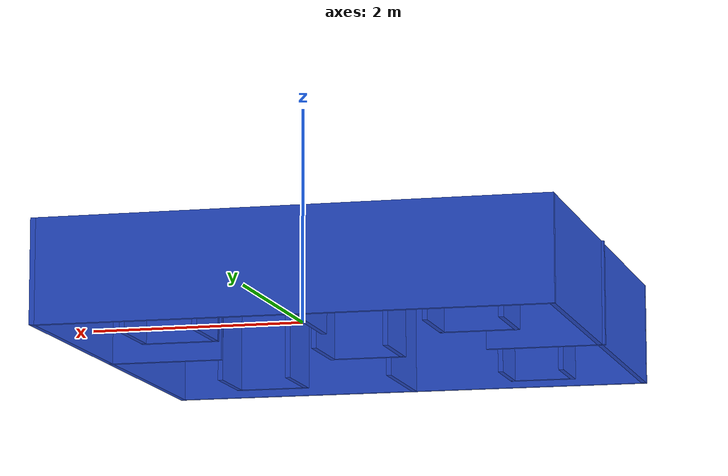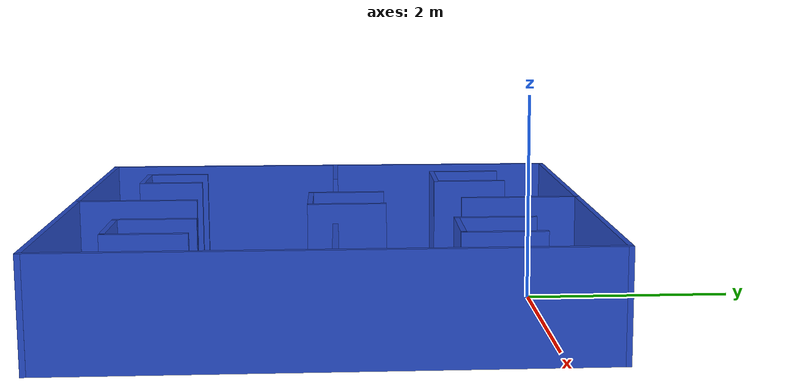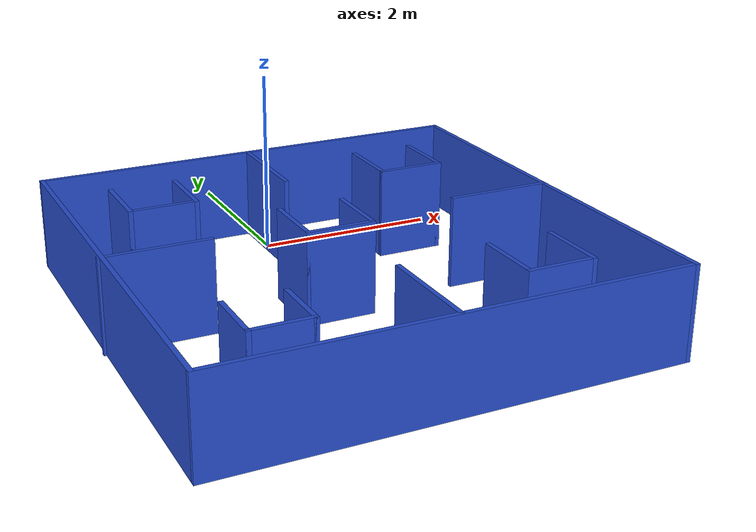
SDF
<?xml version='1.0'?>
<sdf version='1.7'>
  <model name='blue_maze'>
    <link name='Wall_63'>
      <pose>0.012877 0.484032 0 0 -0 0</pose>
      <self_collide>0</self_collide>
      <enable_wind>0</enable_wind>
      <kinematic>0</kinematic>
      <gravity>1</gravity>
      <inertial>
        <mass>1</mass>
        <pose>0 0 0 0 -0 0</pose>
        <inertia>
          <ixx>1</ixx>
          <ixy>0</ixy>
          <ixz>0</ixz>
          <iyy>1</iyy>
          <iyz>0</iyz>
          <izz>1</izz>
        </inertia>
      </inertial>
      <visual name='Wall_63_Visual'>
        <pose>0 0 0.5 0 -0 0</pose>
        <geometry>
          <box>
            <size>4.9 0.05 1</size>
          </box>
        </geometry>
        <material>
          <script>
            <uri>file://media/materials/scripts/gazebo.material</uri>
            <name>Gazebo/Blue</name>
          </script>
          <ambient>1 1 1 1</ambient>
          <shader type='pixel'>
            <normal_map>__default__</normal_map>
          </shader>
          <diffuse>0 0 1 1</diffuse>
          <specular>0.1 0.1 0.1 1</specular>
          <emissive>0 0 0 1</emissive>
        </material>
        <meta>
          <layer>0</layer>
        </meta>
        <transparency>0</transparency>
        <cast_shadows>1</cast_shadows>
      </visual>
      <collision name='Wall_63_Collision'>
        <laser_retro>0</laser_retro>
        <max_contacts>10</max_contacts>
        <pose>0 0 0.5 0 -0 0</pose>
        <geometry>
          <box>
            <size>4.9 0.05 1</size>
          </box>
        </geometry>
        <surface>
          <friction>
            <ode>
              <mu>1</mu>
              <mu2>1</mu2>
              <fdir1>0 0 0</fdir1>
              <slip1>0</slip1>
              <slip2>0</slip2>
            </ode>
            <torsional>
              <coefficient>1</coefficient>
              <patch_radius>0</patch_radius>
              <surface_radius>0</surface_radius>
              <use_patch_radius>1</use_patch_radius>
              <ode>
                <slip>0</slip>
              </ode>
            </torsional>
          </friction>
          <bounce>
            <restitution_coefficient>0</restitution_coefficient>
            <threshold>1e+06</threshold>
          </bounce>
          <contact>
            <collide_without_contact>0</collide_without_contact>
            <collide_without_contact_bitmask>1</collide_without_contact_bitmask>
            <collide_bitmask>1</collide_bitmask>
            <ode>
              <soft_cfm>0</soft_cfm>
              <soft_erp>0.2</soft_erp>
              <kp>1e+13</kp>
              <kd>1</kd>
              <max_vel>0.01</max_vel>
              <min_depth>0</min_depth>
            </ode>
            <bullet>
              <split_impulse>1</split_impulse>
              <split_impulse_penetration_threshold>-0.01</split_impulse_penetration_threshold>
              <soft_cfm>0</soft_cfm>
              <soft_erp>0.2</soft_erp>
              <kp>1e+13</kp>
              <kd>1</kd>
            </bullet>
          </contact>
        </surface>
      </collision>
    </link>
    <link name='Wall_65'>
      <pose>-2.41212 -1.94097 0 0 0 -1.5708</pose>
      <self_collide>0</self_collide>
      <enable_wind>0</enable_wind>
      <kinematic>0</kinematic>
      <gravity>1</gravity>
      <inertial>
        <mass>1</mass>
        <pose>0 0 0 0 -0 0</pose>
        <inertia>
          <ixx>1</ixx>
          <ixy>0</ixy>
          <ixz>0</ixz>
          <iyy>1</iyy>
          <iyz>0</iyz>
          <izz>1</izz>
        </inertia>
      </inertial>
      <visual name='Wall_65_Visual'>
        <pose>0 0 0.5 0 -0 0</pose>
        <geometry>
          <box>
            <size>4.89987 0.05 1</size>
          </box>
        </geometry>
        <material>
          <script>
            <uri>file://media/materials/scripts/gazebo.material</uri>
            <name>Gazebo/Blue</name>
          </script>
          <ambient>1 1 1 1</ambient>
          <shader type='pixel'>
            <normal_map>__default__</normal_map>
          </shader>
          <diffuse>0 0 1 1</diffuse>
          <specular>0.1 0.1 0.1 1</specular>
          <emissive>0 0 0 1</emissive>
        </material>
        <meta>
          <layer>0</layer>
        </meta>
        <transparency>0</transparency>
        <cast_shadows>1</cast_shadows>
      </visual>
      <collision name='Wall_65_Collision'>
        <laser_retro>0</laser_retro>
        <max_contacts>10</max_contacts>
        <pose>0 0 0.5 0 -0 0</pose>
        <geometry>
          <box>
            <size>4.89987 0.05 1</size>
          </box>
        </geometry>
        <surface>
          <friction>
            <ode>
              <mu>1</mu>
              <mu2>1</mu2>
              <fdir1>0 0 0</fdir1>
              <slip1>0</slip1>
              <slip2>0</slip2>
            </ode>
            <torsional>
              <coefficient>1</coefficient>
              <patch_radius>0</patch_radius>
              <surface_radius>0</surface_radius>
              <use_patch_radius>1</use_patch_radius>
              <ode>
                <slip>0</slip>
              </ode>
            </torsional>
          </friction>
          <bounce>
            <restitution_coefficient>0</restitution_coefficient>
            <threshold>1e+06</threshold>
          </bounce>
          <contact>
            <collide_without_contact>0</collide_without_contact>
            <collide_without_contact_bitmask>1</collide_without_contact_bitmask>
            <collide_bitmask>1</collide_bitmask>
            <ode>
              <soft_cfm>0</soft_cfm>
              <soft_erp>0.2</soft_erp>
              <kp>1e+13</kp>
              <kd>1</kd>
              <max_vel>0.01</max_vel>
              <min_depth>0</min_depth>
            </ode>
            <bullet>
              <split_impulse>1</split_impulse>
              <split_impulse_penetration_threshold>-0.01</split_impulse_penetration_threshold>
              <soft_cfm>0</soft_cfm>
              <soft_erp>0.2</soft_erp>
              <kp>1e+13</kp>
              <kd>1</kd>
            </bullet>
          </contact>
        </surface>
      </collision>
    </link>
    <link name='Wall_66'>
      <pose>0.012877 -4.36597 0 0 -0 0</pose>
      <self_collide>0</self_collide>
      <enable_wind>0</enable_wind>
      <kinematic>0</kinematic>
      <gravity>1</gravity>
      <inertial>
        <mass>1</mass>
        <pose>0 0 0 0 -0 0</pose>
        <inertia>
          <ixx>1</ixx>
          <ixy>0</ixy>
          <ixz>0</ixz>
          <iyy>1</iyy>
          <iyz>0</iyz>
          <izz>1</izz>
        </inertia>
      </inertial>
      <visual name='Wall_66_Visual'>
        <pose>0 0 0.5 0 -0 0</pose>
        <geometry>
          <box>
            <size>4.90049 0.05 1</size>
          </box>
        </geometry>
        <material>
          <script>
            <uri>file://media/materials/scripts/gazebo.material</uri>
            <name>Gazebo/Blue</name>
          </script>
          <ambient>1 1 1 1</ambient>
          <shader type='pixel'>
            <normal_map>__default__</normal_map>
          </shader>
          <diffuse>0 0 1 1</diffuse>
          <specular>0.1 0.1 0.1 1</specular>
          <emissive>0 0 0 1</emissive>
        </material>
        <meta>
          <layer>0</layer>
        </meta>
        <transparency>0</transparency>
        <cast_shadows>1</cast_shadows>
      </visual>
      <collision name='Wall_66_Collision'>
        <laser_retro>0</laser_retro>
        <max_contacts>10</max_contacts>
        <pose>0 0 0.5 0 -0 0</pose>
        <geometry>
          <box>
            <size>4.90049 0.05 1</size>
          </box>
        </geometry>
        <surface>
          <friction>
            <ode>
              <mu>1</mu>
              <mu2>1</mu2>
              <fdir1>0 0 0</fdir1>
              <slip1>0</slip1>
              <slip2>0</slip2>
            </ode>
            <torsional>
              <coefficient>1</coefficient>
              <patch_radius>0</patch_radius>
              <surface_radius>0</surface_radius>
              <use_patch_radius>1</use_patch_radius>
              <ode>
                <slip>0</slip>
              </ode>
            </torsional>
          </friction>
          <bounce>
            <restitution_coefficient>0</restitution_coefficient>
            <threshold>1e+06</threshold>
          </bounce>
          <contact>
            <collide_without_contact>0</collide_without_contact>
            <collide_without_contact_bitmask>1</collide_without_contact_bitmask>
            <collide_bitmask>1</collide_bitmask>
            <ode>
              <soft_cfm>0</soft_cfm>
              <soft_erp>0.2</soft_erp>
              <kp>1e+13</kp>
              <kd>1</kd>
              <max_vel>0.01</max_vel>
              <min_depth>0</min_depth>
            </ode>
            <bullet>
              <split_impulse>1</split_impulse>
              <split_impulse_penetration_threshold>-0.01</split_impulse_penetration_threshold>
              <soft_cfm>0</soft_cfm>
              <soft_erp>0.2</soft_erp>
              <kp>1e+13</kp>
              <kd>1</kd>
            </bullet>
          </contact>
        </surface>
      </collision>
    </link>
    <link name='Wall_67'>
      <pose>2.43788 -1.94097 0 0 -0 1.5708</pose>
      <self_collide>0</self_collide>
      <enable_wind>0</enable_wind>
      <kinematic>0</kinematic>
      <gravity>1</gravity>
      <inertial>
        <mass>1</mass>
        <pose>0 0 0 0 -0 0</pose>
        <inertia>
          <ixx>1</ixx>
          <ixy>0</ixy>
          <ixz>0</ixz>
          <iyy>1</iyy>
          <iyz>0</iyz>
          <izz>1</izz>
        </inertia>
      </inertial>
      <visual name='Wall_67_Visual'>
        <pose>0 0 0.5 0 -0 0</pose>
        <geometry>
          <box>
            <size>4.90013 0.05 1</size>
          </box>
        </geometry>
        <material>
          <script>
            <uri>file://media/materials/scripts/gazebo.material</uri>
            <name>Gazebo/Blue</name>
          </script>
          <ambient>1 1 1 1</ambient>
          <shader type='pixel'>
            <normal_map>__default__</normal_map>
          </shader>
          <diffuse>0 0 1 1</diffuse>
          <specular>0.1 0.1 0.1 1</specular>
          <emissive>0 0 0 1</emissive>
        </material>
        <meta>
          <layer>0</layer>
        </meta>
        <transparency>0</transparency>
        <cast_shadows>1</cast_shadows>
      </visual>
      <collision name='Wall_67_Collision'>
        <laser_retro>0</laser_retro>
        <max_contacts>10</max_contacts>
        <pose>0 0 0.5 0 -0 0</pose>
        <geometry>
          <box>
            <size>4.90013 0.05 1</size>
          </box>
        </geometry>
        <surface>
          <friction>
            <ode>
              <mu>1</mu>
              <mu2>1</mu2>
              <fdir1>0 0 0</fdir1>
              <slip1>0</slip1>
              <slip2>0</slip2>
            </ode>
            <torsional>
              <coefficient>1</coefficient>
              <patch_radius>0</patch_radius>
              <surface_radius>0</surface_radius>
              <use_patch_radius>1</use_patch_radius>
              <ode>
                <slip>0</slip>
              </ode>
            </torsional>
          </friction>
          <bounce>
            <restitution_coefficient>0</restitution_coefficient>
            <threshold>1e+06</threshold>
          </bounce>
          <contact>
            <collide_without_contact>0</collide_without_contact>
            <collide_without_contact_bitmask>1</collide_without_contact_bitmask>
            <collide_bitmask>1</collide_bitmask>
            <ode>
              <soft_cfm>0</soft_cfm>
              <soft_erp>0.2</soft_erp>
              <kp>1e+13</kp>
              <kd>1</kd>
              <max_vel>0.01</max_vel>
              <min_depth>0</min_depth>
            </ode>
            <bullet>
              <split_impulse>1</split_impulse>
              <split_impulse_penetration_threshold>-0.01</split_impulse_penetration_threshold>
              <soft_cfm>0</soft_cfm>
              <soft_erp>0.2</soft_erp>
              <kp>1e+13</kp>
              <kd>1</kd>
            </bullet>
          </contact>
        </surface>
      </collision>
    </link>
    <link name='Wall_69'>
      <pose>-1.76612 -3.60497 0 0 0 -1.5708</pose>
      <self_collide>0</self_collide>
      <enable_wind>0</enable_wind>
      <kinematic>0</kinematic>
      <gravity>1</gravity>
      <inertial>
        <mass>1</mass>
        <pose>0 0 0 0 -0 0</pose>
        <inertia>
          <ixx>1</ixx>
          <ixy>0</ixy>
          <ixz>0</ixz>
          <iyy>1</iyy>
          <iyz>0</iyz>
          <izz>1</izz>
        </inertia>
      </inertial>
      <visual name='Wall_69_Visual'>
        <pose>0 0 0.5 0 -0 0</pose>
        <geometry>
          <box>
            <size>0.65 0.05 1</size>
          </box>
        </geometry>
        <material>
          <script>
            <uri>file://media/materials/scripts/gazebo.material</uri>
            <name>Gazebo/Blue</name>
          </script>
          <ambient>1 1 1 1</ambient>
          <shader type='pixel'>
            <normal_map>__default__</normal_map>
          </shader>
          <diffuse>0 0 1 1</diffuse>
          <specular>0.1 0.1 0.1 1</specular>
          <emissive>0 0 0 1</emissive>
        </material>
        <meta>
          <layer>0</layer>
        </meta>
        <transparency>0</transparency>
        <cast_shadows>1</cast_shadows>
      </visual>
      <collision name='Wall_69_Collision'>
        <laser_retro>0</laser_retro>
        <max_contacts>10</max_contacts>
        <pose>0 0 0.5 0 -0 0</pose>
        <geometry>
          <box>
            <size>0.65 0.05 1</size>
          </box>
        </geometry>
        <surface>
          <friction>
            <ode>
              <mu>1</mu>
              <mu2>1</mu2>
              <fdir1>0 0 0</fdir1>
              <slip1>0</slip1>
              <slip2>0</slip2>
            </ode>
            <torsional>
              <coefficient>1</coefficient>
              <patch_radius>0</patch_radius>
              <surface_radius>0</surface_radius>
              <use_patch_radius>1</use_patch_radius>
              <ode>
                <slip>0</slip>
              </ode>
            </torsional>
          </friction>
          <bounce>
            <restitution_coefficient>0</restitution_coefficient>
            <threshold>1e+06</threshold>
          </bounce>
          <contact>
            <collide_without_contact>0</collide_without_contact>
            <collide_without_contact_bitmask>1</collide_without_contact_bitmask>
            <collide_bitmask>1</collide_bitmask>
            <ode>
              <soft_cfm>0</soft_cfm>
              <soft_erp>0.2</soft_erp>
              <kp>1e+13</kp>
              <kd>1</kd>
              <max_vel>0.01</max_vel>
              <min_depth>0</min_depth>
            </ode>
            <bullet>
              <split_impulse>1</split_impulse>
              <split_impulse_penetration_threshold>-0.01</split_impulse_penetration_threshold>
              <soft_cfm>0</soft_cfm>
              <soft_erp>0.2</soft_erp>
              <kp>1e+13</kp>
              <kd>1</kd>
            </bullet>
          </contact>
        </surface>
      </collision>
    </link>
    <link name='Wall_70'>
      <pose>-1.46212 -3.90497 0 0 -0 0</pose>
      <self_collide>0</self_collide>
      <enable_wind>0</enable_wind>
      <kinematic>0</kinematic>
      <gravity>1</gravity>
      <inertial>
        <mass>1</mass>
        <pose>0 0 0 0 -0 0</pose>
        <inertia>
          <ixx>1</ixx>
          <ixy>0</ixy>
          <ixz>0</ixz>
          <iyy>1</iyy>
          <iyz>0</iyz>
          <izz>1</izz>
        </inertia>
      </inertial>
      <visual name='Wall_70_Visual'>
        <pose>0 0 0.5 0 -0 0</pose>
        <geometry>
          <box>
            <size>0.658 0.05 1</size>
          </box>
        </geometry>
        <material>
          <script>
            <uri>file://media/materials/scripts/gazebo.material</uri>
            <name>Gazebo/Blue</name>
          </script>
          <ambient>1 1 1 1</ambient>
          <shader type='pixel'>
            <normal_map>__default__</normal_map>
          </shader>
          <diffuse>0 0 1 1</diffuse>
          <specular>0.1 0.1 0.1 1</specular>
          <emissive>0 0 0 1</emissive>
        </material>
        <meta>
          <layer>0</layer>
        </meta>
        <transparency>0</transparency>
        <cast_shadows>1</cast_shadows>
      </visual>
      <collision name='Wall_70_Collision'>
        <laser_retro>0</laser_retro>
        <max_contacts>10</max_contacts>
        <pose>0 0 0.5 0 -0 0</pose>
        <geometry>
          <box>
            <size>0.658 0.05 1</size>
          </box>
        </geometry>
        <surface>
          <friction>
            <ode>
              <mu>1</mu>
              <mu2>1</mu2>
              <fdir1>0 0 0</fdir1>
              <slip1>0</slip1>
              <slip2>0</slip2>
            </ode>
            <torsional>
              <coefficient>1</coefficient>
              <patch_radius>0</patch_radius>
              <surface_radius>0</surface_radius>
              <use_patch_radius>1</use_patch_radius>
              <ode>
                <slip>0</slip>
              </ode>
            </torsional>
          </friction>
          <bounce>
            <restitution_coefficient>0</restitution_coefficient>
            <threshold>1e+06</threshold>
          </bounce>
          <contact>
            <collide_without_contact>0</collide_without_contact>
            <collide_without_contact_bitmask>1</collide_without_contact_bitmask>
            <collide_bitmask>1</collide_bitmask>
            <ode>
              <soft_cfm>0</soft_cfm>
              <soft_erp>0.2</soft_erp>
              <kp>1e+13</kp>
              <kd>1</kd>
              <max_vel>0.01</max_vel>
              <min_depth>0</min_depth>
            </ode>
            <bullet>
              <split_impulse>1</split_impulse>
              <split_impulse_penetration_threshold>-0.01</split_impulse_penetration_threshold>
              <soft_cfm>0</soft_cfm>
              <soft_erp>0.2</soft_erp>
              <kp>1e+13</kp>
              <kd>1</kd>
            </bullet>
          </contact>
        </surface>
      </collision>
    </link>
    <link name='Wall_71'>
      <pose>-1.15812 -3.60497 0 0 -0 1.5708</pose>
      <self_collide>0</self_collide>
      <enable_wind>0</enable_wind>
      <kinematic>0</kinematic>
      <gravity>1</gravity>
      <inertial>
        <mass>1</mass>
        <pose>0 0 0 0 -0 0</pose>
        <inertia>
          <ixx>1</ixx>
          <ixy>0</ixy>
          <ixz>0</ixz>
          <iyy>1</iyy>
          <iyz>0</iyz>
          <izz>1</izz>
        </inertia>
      </inertial>
      <visual name='Wall_71_Visual'>
        <pose>0 0 0.5 0 -0 0</pose>
        <geometry>
          <box>
            <size>0.65 0.05 1</size>
          </box>
        </geometry>
        <material>
          <script>
            <uri>file://media/materials/scripts/gazebo.material</uri>
            <name>Gazebo/Blue</name>
          </script>
          <ambient>1 1 1 1</ambient>
          <shader type='pixel'>
            <normal_map>__default__</normal_map>
          </shader>
          <diffuse>0 0 1 1</diffuse>
          <specular>0.1 0.1 0.1 1</specular>
          <emissive>0 0 0 1</emissive>
        </material>
        <meta>
          <layer>0</layer>
        </meta>
        <transparency>0</transparency>
        <cast_shadows>1</cast_shadows>
      </visual>
      <collision name='Wall_71_Collision'>
        <laser_retro>0</laser_retro>
        <max_contacts>10</max_contacts>
        <pose>0 0 0.5 0 -0 0</pose>
        <geometry>
          <box>
            <size>0.65 0.05 1</size>
          </box>
        </geometry>
        <surface>
          <friction>
            <ode>
              <mu>1</mu>
              <mu2>1</mu2>
              <fdir1>0 0 0</fdir1>
              <slip1>0</slip1>
              <slip2>0</slip2>
            </ode>
            <torsional>
              <coefficient>1</coefficient>
              <patch_radius>0</patch_radius>
              <surface_radius>0</surface_radius>
              <use_patch_radius>1</use_patch_radius>
              <ode>
                <slip>0</slip>
              </ode>
            </torsional>
          </friction>
          <bounce>
            <restitution_coefficient>0</restitution_coefficient>
            <threshold>1e+06</threshold>
          </bounce>
          <contact>
            <collide_without_contact>0</collide_without_contact>
            <collide_without_contact_bitmask>1</collide_without_contact_bitmask>
            <collide_bitmask>1</collide_bitmask>
            <ode>
              <soft_cfm>0</soft_cfm>
              <soft_erp>0.2</soft_erp>
              <kp>1e+13</kp>
              <kd>1</kd>
              <max_vel>0.01</max_vel>
              <min_depth>0</min_depth>
            </ode>
            <bullet>
              <split_impulse>1</split_impulse>
              <split_impulse_penetration_threshold>-0.01</split_impulse_penetration_threshold>
              <soft_cfm>0</soft_cfm>
              <soft_erp>0.2</soft_erp>
              <kp>1e+13</kp>
              <kd>1</kd>
            </bullet>
          </contact>
        </surface>
      </collision>
    </link>
    <link name='Wall_73'>
      <pose>0.981877 -3.49697 0 0 0 -1.5708</pose>
      <self_collide>0</self_collide>
      <enable_wind>0</enable_wind>
      <kinematic>0</kinematic>
      <gravity>1</gravity>
      <inertial>
        <mass>1</mass>
        <pose>0 0 0 0 -0 0</pose>
        <inertia>
          <ixx>1</ixx>
          <ixy>0</ixy>
          <ixz>0</ixz>
          <iyy>1</iyy>
          <iyz>0</iyz>
          <izz>1</izz>
        </inertia>
      </inertial>
      <visual name='Wall_73_Visual'>
        <pose>0 0 0.5 0 -0 0</pose>
        <geometry>
          <box>
            <size>0.75 0.05 1</size>
          </box>
        </geometry>
        <material>
          <script>
            <uri>file://media/materials/scripts/gazebo.material</uri>
            <name>Gazebo/Blue</name>
          </script>
          <ambient>1 1 1 1</ambient>
          <shader type='pixel'>
            <normal_map>__default__</normal_map>
          </shader>
          <diffuse>0 0 1 1</diffuse>
          <specular>0.1 0.1 0.1 1</specular>
          <emissive>0 0 0 1</emissive>
        </material>
        <meta>
          <layer>0</layer>
        </meta>
        <transparency>0</transparency>
        <cast_shadows>1</cast_shadows>
      </visual>
      <collision name='Wall_73_Collision'>
        <laser_retro>0</laser_retro>
        <max_contacts>10</max_contacts>
        <pose>0 0 0.5 0 -0 0</pose>
        <geometry>
          <box>
            <size>0.75 0.05 1</size>
          </box>
        </geometry>
        <surface>
          <friction>
            <ode>
              <mu>1</mu>
              <mu2>1</mu2>
              <fdir1>0 0 0</fdir1>
              <slip1>0</slip1>
              <slip2>0</slip2>
            </ode>
            <torsional>
              <coefficient>1</coefficient>
              <patch_radius>0</patch_radius>
              <surface_radius>0</surface_radius>
              <use_patch_radius>1</use_patch_radius>
              <ode>
                <slip>0</slip>
              </ode>
            </torsional>
          </friction>
          <bounce>
            <restitution_coefficient>0</restitution_coefficient>
            <threshold>1e+06</threshold>
          </bounce>
          <contact>
            <collide_without_contact>0</collide_without_contact>
            <collide_without_contact_bitmask>1</collide_without_contact_bitmask>
            <collide_bitmask>1</collide_bitmask>
            <ode>
              <soft_cfm>0</soft_cfm>
              <soft_erp>0.2</soft_erp>
              <kp>1e+13</kp>
              <kd>1</kd>
              <max_vel>0.01</max_vel>
              <min_depth>0</min_depth>
            </ode>
            <bullet>
              <split_impulse>1</split_impulse>
              <split_impulse_penetration_threshold>-0.01</split_impulse_penetration_threshold>
              <soft_cfm>0</soft_cfm>
              <soft_erp>0.2</soft_erp>
              <kp>1e+13</kp>
              <kd>1</kd>
            </bullet>
          </contact>
        </surface>
      </collision>
    </link>
    <link name='Wall_74'>
      <pose>1.33188 -3.84697 0 0 -0 0</pose>
      <self_collide>0</self_collide>
      <enable_wind>0</enable_wind>
      <kinematic>0</kinematic>
      <gravity>1</gravity>
      <inertial>
        <mass>1</mass>
        <pose>0 0 0 0 -0 0</pose>
        <inertia>
          <ixx>1</ixx>
          <ixy>0</ixy>
          <ixz>0</ixz>
          <iyy>1</iyy>
          <iyz>0</iyz>
          <izz>1</izz>
        </inertia>
      </inertial>
      <visual name='Wall_74_Visual'>
        <pose>0 0 0.5 0 -0 0</pose>
        <geometry>
          <box>
            <size>0.75 0.05 1</size>
          </box>
        </geometry>
        <material>
          <script>
            <uri>file://media/materials/scripts/gazebo.material</uri>
            <name>Gazebo/Blue</name>
          </script>
          <ambient>1 1 1 1</ambient>
          <shader type='pixel'>
            <normal_map>__default__</normal_map>
          </shader>
          <diffuse>0 0 1 1</diffuse>
          <specular>0.1 0.1 0.1 1</specular>
          <emissive>0 0 0 1</emissive>
        </material>
        <meta>
          <layer>0</layer>
        </meta>
        <transparency>0</transparency>
        <cast_shadows>1</cast_shadows>
      </visual>
      <collision name='Wall_74_Collision'>
        <laser_retro>0</laser_retro>
        <max_contacts>10</max_contacts>
        <pose>0 0 0.5 0 -0 0</pose>
        <geometry>
          <box>
            <size>0.75 0.05 1</size>
          </box>
        </geometry>
        <surface>
          <friction>
            <ode>
              <mu>1</mu>
              <mu2>1</mu2>
              <fdir1>0 0 0</fdir1>
              <slip1>0</slip1>
              <slip2>0</slip2>
            </ode>
            <torsional>
              <coefficient>1</coefficient>
              <patch_radius>0</patch_radius>
              <surface_radius>0</surface_radius>
              <use_patch_radius>1</use_patch_radius>
              <ode>
                <slip>0</slip>
              </ode>
            </torsional>
          </friction>
          <bounce>
            <restitution_coefficient>0</restitution_coefficient>
            <threshold>1e+06</threshold>
          </bounce>
          <contact>
            <collide_without_contact>0</collide_without_contact>
            <collide_without_contact_bitmask>1</collide_without_contact_bitmask>
            <collide_bitmask>1</collide_bitmask>
            <ode>
              <soft_cfm>0</soft_cfm>
              <soft_erp>0.2</soft_erp>
              <kp>1e+13</kp>
              <kd>1</kd>
              <max_vel>0.01</max_vel>
              <min_depth>0</min_depth>
            </ode>
            <bullet>
              <split_impulse>1</split_impulse>
              <split_impulse_penetration_threshold>-0.01</split_impulse_penetration_threshold>
              <soft_cfm>0</soft_cfm>
              <soft_erp>0.2</soft_erp>
              <kp>1e+13</kp>
              <kd>1</kd>
            </bullet>
          </contact>
        </surface>
      </collision>
    </link>
    <link name='Wall_75'>
      <pose>1.68188 -3.49697 0 0 -0 1.5708</pose>
      <self_collide>0</self_collide>
      <enable_wind>0</enable_wind>
      <kinematic>0</kinematic>
      <gravity>1</gravity>
      <inertial>
        <mass>1</mass>
        <pose>0 0 0 0 -0 0</pose>
        <inertia>
          <ixx>1</ixx>
          <ixy>0</ixy>
          <ixz>0</ixz>
          <iyy>1</iyy>
          <iyz>0</iyz>
          <izz>1</izz>
        </inertia>
      </inertial>
      <visual name='Wall_75_Visual'>
        <pose>0 0 0.5 0 -0 0</pose>
        <geometry>
          <box>
            <size>0.75 0.05 1</size>
          </box>
        </geometry>
        <material>
          <script>
            <uri>file://media/materials/scripts/gazebo.material</uri>
            <name>Gazebo/Blue</name>
          </script>
          <ambient>1 1 1 1</ambient>
          <shader type='pixel'>
            <normal_map>__default__</normal_map>
          </shader>
          <diffuse>0 0 1 1</diffuse>
          <specular>0.1 0.1 0.1 1</specular>
          <emissive>0 0 0 1</emissive>
        </material>
        <meta>
          <layer>0</layer>
        </meta>
        <transparency>0</transparency>
        <cast_shadows>1</cast_shadows>
      </visual>
      <collision name='Wall_75_Collision'>
        <laser_retro>0</laser_retro>
        <max_contacts>10</max_contacts>
        <pose>0 0 0.5 0 -0 0</pose>
        <geometry>
          <box>
            <size>0.75 0.05 1</size>
          </box>
        </geometry>
        <surface>
          <friction>
            <ode>
              <mu>1</mu>
              <mu2>1</mu2>
              <fdir1>0 0 0</fdir1>
              <slip1>0</slip1>
              <slip2>0</slip2>
            </ode>
            <torsional>
              <coefficient>1</coefficient>
              <patch_radius>0</patch_radius>
              <surface_radius>0</surface_radius>
              <use_patch_radius>1</use_patch_radius>
              <ode>
                <slip>0</slip>
              </ode>
            </torsional>
          </friction>
          <bounce>
            <restitution_coefficient>0</restitution_coefficient>
            <threshold>1e+06</threshold>
          </bounce>
          <contact>
            <collide_without_contact>0</collide_without_contact>
            <collide_without_contact_bitmask>1</collide_without_contact_bitmask>
            <collide_bitmask>1</collide_bitmask>
            <ode>
              <soft_cfm>0</soft_cfm>
              <soft_erp>0.2</soft_erp>
              <kp>1e+13</kp>
              <kd>1</kd>
              <max_vel>0.01</max_vel>
              <min_depth>0</min_depth>
            </ode>
            <bullet>
              <split_impulse>1</split_impulse>
              <split_impulse_penetration_threshold>-0.01</split_impulse_penetration_threshold>
              <soft_cfm>0</soft_cfm>
              <soft_erp>0.2</soft_erp>
              <kp>1e+13</kp>
              <kd>1</kd>
            </bullet>
          </contact>
        </surface>
      </collision>
    </link>
    <link name='Wall_77'>
      <pose>-1.8258 -0.474014 0 0 0 -1.5708</pose>
      <self_collide>0</self_collide>
      <enable_wind>0</enable_wind>
      <kinematic>0</kinematic>
      <gravity>1</gravity>
      <inertial>
        <mass>1</mass>
        <pose>0 0 0 0 -0 0</pose>
        <inertia>
          <ixx>1</ixx>
          <ixy>0</ixy>
          <ixz>0</ixz>
          <iyy>1</iyy>
          <iyz>0</iyz>
          <izz>1</izz>
        </inertia>
      </inertial>
      <visual name='Wall_77_Visual'>
        <pose>0 0 0.5 0 -0 0</pose>
        <geometry>
          <box>
            <size>0.75 0.05 1</size>
          </box>
        </geometry>
        <material>
          <script>
            <uri>file://media/materials/scripts/gazebo.material</uri>
            <name>Gazebo/Blue</name>
          </script>
          <ambient>1 1 1 1</ambient>
          <shader type='pixel'>
            <normal_map>__default__</normal_map>
          </shader>
          <diffuse>0 0 1 1</diffuse>
          <specular>0.1 0.1 0.1 1</specular>
          <emissive>0 0 0 1</emissive>
        </material>
        <meta>
          <layer>0</layer>
        </meta>
        <transparency>0</transparency>
        <cast_shadows>1</cast_shadows>
      </visual>
      <collision name='Wall_77_Collision'>
        <laser_retro>0</laser_retro>
        <max_contacts>10</max_contacts>
        <pose>0 0 0.5 0 -0 0</pose>
        <geometry>
          <box>
            <size>0.75 0.05 1</size>
          </box>
        </geometry>
        <surface>
          <friction>
            <ode>
              <mu>1</mu>
              <mu2>1</mu2>
              <fdir1>0 0 0</fdir1>
              <slip1>0</slip1>
              <slip2>0</slip2>
            </ode>
            <torsional>
              <coefficient>1</coefficient>
              <patch_radius>0</patch_radius>
              <surface_radius>0</surface_radius>
              <use_patch_radius>1</use_patch_radius>
              <ode>
                <slip>0</slip>
              </ode>
            </torsional>
          </friction>
          <bounce>
            <restitution_coefficient>0</restitution_coefficient>
            <threshold>1e+06</threshold>
          </bounce>
          <contact>
            <collide_without_contact>0</collide_without_contact>
            <collide_without_contact_bitmask>1</collide_without_contact_bitmask>
            <collide_bitmask>1</collide_bitmask>
            <ode>
              <soft_cfm>0</soft_cfm>
              <soft_erp>0.2</soft_erp>
              <kp>1e+13</kp>
              <kd>1</kd>
              <max_vel>0.01</max_vel>
              <min_depth>0</min_depth>
            </ode>
            <bullet>
              <split_impulse>1</split_impulse>
              <split_impulse_penetration_threshold>-0.01</split_impulse_penetration_threshold>
              <soft_cfm>0</soft_cfm>
              <soft_erp>0.2</soft_erp>
              <kp>1e+13</kp>
              <kd>1</kd>
            </bullet>
          </contact>
        </surface>
      </collision>
    </link>
    <link name='Wall_78'>
      <pose>-1.46884 -0.824014 0 0 -0 0</pose>
      <self_collide>0</self_collide>
      <enable_wind>0</enable_wind>
      <kinematic>0</kinematic>
      <gravity>1</gravity>
      <inertial>
        <mass>1</mass>
        <pose>0 0 0 0 -0 0</pose>
        <inertia>
          <ixx>1</ixx>
          <ixy>0</ixy>
          <ixz>0</ixz>
          <iyy>1</iyy>
          <iyz>0</iyz>
          <izz>1</izz>
        </inertia>
      </inertial>
      <visual name='Wall_78_Visual'>
        <pose>0 0 0.5 0 -0 0</pose>
        <geometry>
          <box>
            <size>0.75 0.05 1</size>
          </box>
        </geometry>
        <material>
          <script>
            <uri>file://media/materials/scripts/gazebo.material</uri>
            <name>Gazebo/Blue</name>
          </script>
          <ambient>1 1 1 1</ambient>
          <shader type='pixel'>
            <normal_map>__default__</normal_map>
          </shader>
          <diffuse>0 0 1 1</diffuse>
          <specular>0.1 0.1 0.1 1</specular>
          <emissive>0 0 0 1</emissive>
        </material>
        <meta>
          <layer>0</layer>
        </meta>
        <transparency>0</transparency>
        <cast_shadows>1</cast_shadows>
      </visual>
      <collision name='Wall_78_Collision'>
        <laser_retro>0</laser_retro>
        <max_contacts>10</max_contacts>
        <pose>0 0 0.5 0 -0 0</pose>
        <geometry>
          <box>
            <size>0.75 0.05 1</size>
          </box>
        </geometry>
        <surface>
          <friction>
            <ode>
              <mu>1</mu>
              <mu2>1</mu2>
              <fdir1>0 0 0</fdir1>
              <slip1>0</slip1>
              <slip2>0</slip2>
            </ode>
            <torsional>
              <coefficient>1</coefficient>
              <patch_radius>0</patch_radius>
              <surface_radius>0</surface_radius>
              <use_patch_radius>1</use_patch_radius>
              <ode>
                <slip>0</slip>
              </ode>
            </torsional>
          </friction>
          <bounce>
            <restitution_coefficient>0</restitution_coefficient>
            <threshold>1e+06</threshold>
          </bounce>
          <contact>
            <collide_without_contact>0</collide_without_contact>
            <collide_without_contact_bitmask>1</collide_without_contact_bitmask>
            <collide_bitmask>1</collide_bitmask>
            <ode>
              <soft_cfm>0</soft_cfm>
              <soft_erp>0.2</soft_erp>
              <kp>1e+13</kp>
              <kd>1</kd>
              <max_vel>0.01</max_vel>
              <min_depth>0</min_depth>
            </ode>
            <bullet>
              <split_impulse>1</split_impulse>
              <split_impulse_penetration_threshold>-0.01</split_impulse_penetration_threshold>
              <soft_cfm>0</soft_cfm>
              <soft_erp>0.2</soft_erp>
              <kp>1e+13</kp>
              <kd>1</kd>
            </bullet>
          </contact>
        </surface>
      </collision>
    </link>
    <link name='Wall_79'>
      <pose>-1.11884 -0.474014 0 0 -0 1.5708</pose>
      <self_collide>0</self_collide>
      <enable_wind>0</enable_wind>
      <kinematic>0</kinematic>
      <gravity>1</gravity>
      <inertial>
        <mass>1</mass>
        <pose>0 0 0 0 -0 0</pose>
        <inertia>
          <ixx>1</ixx>
          <ixy>0</ixy>
          <ixz>0</ixz>
          <iyy>1</iyy>
          <iyz>0</iyz>
          <izz>1</izz>
        </inertia>
      </inertial>
      <visual name='Wall_79_Visual'>
        <pose>0 0 0.5 0 -0 0</pose>
        <geometry>
          <box>
            <size>0.75 0.05 1</size>
          </box>
        </geometry>
        <material>
          <script>
            <uri>file://media/materials/scripts/gazebo.material</uri>
            <name>Gazebo/Blue</name>
          </script>
          <ambient>1 1 1 1</ambient>
          <shader type='pixel'>
            <normal_map>__default__</normal_map>
          </shader>
          <diffuse>0 0 1 1</diffuse>
          <specular>0.1 0.1 0.1 1</specular>
          <emissive>0 0 0 1</emissive>
        </material>
        <meta>
          <layer>0</layer>
        </meta>
        <transparency>0</transparency>
        <cast_shadows>1</cast_shadows>
      </visual>
      <collision name='Wall_79_Collision'>
        <laser_retro>0</laser_retro>
        <max_contacts>10</max_contacts>
        <pose>0 0 0.5 0 -0 0</pose>
        <geometry>
          <box>
            <size>0.75 0.05 1</size>
          </box>
        </geometry>
        <surface>
          <friction>
            <ode>
              <mu>1</mu>
              <mu2>1</mu2>
              <fdir1>0 0 0</fdir1>
              <slip1>0</slip1>
              <slip2>0</slip2>
            </ode>
            <torsional>
              <coefficient>1</coefficient>
              <patch_radius>0</patch_radius>
              <surface_radius>0</surface_radius>
              <use_patch_radius>1</use_patch_radius>
              <ode>
                <slip>0</slip>
              </ode>
            </torsional>
          </friction>
          <bounce>
            <restitution_coefficient>0</restitution_coefficient>
            <threshold>1e+06</threshold>
          </bounce>
          <contact>
            <collide_without_contact>0</collide_without_contact>
            <collide_without_contact_bitmask>1</collide_without_contact_bitmask>
            <collide_bitmask>1</collide_bitmask>
            <ode>
              <soft_cfm>0</soft_cfm>
              <soft_erp>0.2</soft_erp>
              <kp>1e+13</kp>
              <kd>1</kd>
              <max_vel>0.01</max_vel>
              <min_depth>0</min_depth>
            </ode>
            <bullet>
              <split_impulse>1</split_impulse>
              <split_impulse_penetration_threshold>-0.01</split_impulse_penetration_threshold>
              <soft_cfm>0</soft_cfm>
              <soft_erp>0.2</soft_erp>
              <kp>1e+13</kp>
              <kd>1</kd>
            </bullet>
          </contact>
        </surface>
      </collision>
    </link>
    <link name='Wall_81'>
      <pose>1.05809 -0.450863 0 0 0 -1.5714</pose>
      <self_collide>0</self_collide>
      <enable_wind>0</enable_wind>
      <kinematic>0</kinematic>
      <gravity>1</gravity>
      <inertial>
        <mass>1</mass>
        <pose>0 0 0 0 -0 0</pose>
        <inertia>
          <ixx>1</ixx>
          <ixy>0</ixy>
          <ixz>0</ixz>
          <iyy>1</iyy>
          <iyz>0</iyz>
          <izz>1</izz>
        </inertia>
      </inertial>
      <visual name='Wall_81_Visual'>
        <pose>0 0 0.5 0 -0 0</pose>
        <geometry>
          <box>
            <size>0.75 0.05 1</size>
          </box>
        </geometry>
        <material>
          <script>
            <uri>file://media/materials/scripts/gazebo.material</uri>
            <name>Gazebo/Blue</name>
          </script>
          <ambient>1 1 1 1</ambient>
          <shader type='pixel'>
            <normal_map>__default__</normal_map>
          </shader>
          <diffuse>0 0 1 1</diffuse>
          <specular>0.1 0.1 0.1 1</specular>
          <emissive>0 0 0 1</emissive>
        </material>
        <meta>
          <layer>0</layer>
        </meta>
        <transparency>0</transparency>
        <cast_shadows>1</cast_shadows>
      </visual>
      <collision name='Wall_81_Collision'>
        <laser_retro>0</laser_retro>
        <max_contacts>10</max_contacts>
        <pose>0 0 0.5 0 -0 0</pose>
        <geometry>
          <box>
            <size>0.75 0.05 1</size>
          </box>
        </geometry>
        <surface>
          <friction>
            <ode>
              <mu>1</mu>
              <mu2>1</mu2>
              <fdir1>0 0 0</fdir1>
              <slip1>0</slip1>
              <slip2>0</slip2>
            </ode>
            <torsional>
              <coefficient>1</coefficient>
              <patch_radius>0</patch_radius>
              <surface_radius>0</surface_radius>
              <use_patch_radius>1</use_patch_radius>
              <ode>
                <slip>0</slip>
              </ode>
            </torsional>
          </friction>
          <bounce>
            <restitution_coefficient>0</restitution_coefficient>
            <threshold>1e+06</threshold>
          </bounce>
          <contact>
            <collide_without_contact>0</collide_without_contact>
            <collide_without_contact_bitmask>1</collide_without_contact_bitmask>
            <collide_bitmask>1</collide_bitmask>
            <ode>
              <soft_cfm>0</soft_cfm>
              <soft_erp>0.2</soft_erp>
              <kp>1e+13</kp>
              <kd>1</kd>
              <max_vel>0.01</max_vel>
              <min_depth>0</min_depth>
            </ode>
            <bullet>
              <split_impulse>1</split_impulse>
              <split_impulse_penetration_threshold>-0.01</split_impulse_penetration_threshold>
              <soft_cfm>0</soft_cfm>
              <soft_erp>0.2</soft_erp>
              <kp>1e+13</kp>
              <kd>1</kd>
            </bullet>
          </contact>
        </surface>
      </collision>
    </link>
    <link name='Wall_82'>
      <pose>1.40788 -0.800968 0 0 -0 0</pose>
      <self_collide>0</self_collide>
      <enable_wind>0</enable_wind>
      <kinematic>0</kinematic>
      <gravity>1</gravity>
      <inertial>
        <mass>1</mass>
        <pose>0 0 0 0 -0 0</pose>
        <inertia>
          <ixx>1</ixx>
          <ixy>0</ixy>
          <ixz>0</ixz>
          <iyy>1</iyy>
          <iyz>0</iyz>
          <izz>1</izz>
        </inertia>
      </inertial>
      <visual name='Wall_82_Visual'>
        <pose>0 0 0.5 0 -0 0</pose>
        <geometry>
          <box>
            <size>0.75 0.05 1</size>
          </box>
        </geometry>
        <material>
          <script>
            <uri>file://media/materials/scripts/gazebo.material</uri>
            <name>Gazebo/Blue</name>
          </script>
          <ambient>1 1 1 1</ambient>
          <shader type='pixel'>
            <normal_map>__default__</normal_map>
          </shader>
          <diffuse>0 0 1 1</diffuse>
          <specular>0.1 0.1 0.1 1</specular>
          <emissive>0 0 0 1</emissive>
        </material>
        <meta>
          <layer>0</layer>
        </meta>
        <transparency>0</transparency>
        <cast_shadows>1</cast_shadows>
      </visual>
      <collision name='Wall_82_Collision'>
        <laser_retro>0</laser_retro>
        <max_contacts>10</max_contacts>
        <pose>0 0 0.5 0 -0 0</pose>
        <geometry>
          <box>
            <size>0.75 0.05 1</size>
          </box>
        </geometry>
        <surface>
          <friction>
            <ode>
              <mu>1</mu>
              <mu2>1</mu2>
              <fdir1>0 0 0</fdir1>
              <slip1>0</slip1>
              <slip2>0</slip2>
            </ode>
            <torsional>
              <coefficient>1</coefficient>
              <patch_radius>0</patch_radius>
              <surface_radius>0</surface_radius>
              <use_patch_radius>1</use_patch_radius>
              <ode>
                <slip>0</slip>
              </ode>
            </torsional>
          </friction>
          <bounce>
            <restitution_coefficient>0</restitution_coefficient>
            <threshold>1e+06</threshold>
          </bounce>
          <contact>
            <collide_without_contact>0</collide_without_contact>
            <collide_without_contact_bitmask>1</collide_without_contact_bitmask>
            <collide_bitmask>1</collide_bitmask>
            <ode>
              <soft_cfm>0</soft_cfm>
              <soft_erp>0.2</soft_erp>
              <kp>1e+13</kp>
              <kd>1</kd>
              <max_vel>0.01</max_vel>
              <min_depth>0</min_depth>
            </ode>
            <bullet>
              <split_impulse>1</split_impulse>
              <split_impulse_penetration_threshold>-0.01</split_impulse_penetration_threshold>
              <soft_cfm>0</soft_cfm>
              <soft_erp>0.2</soft_erp>
              <kp>1e+13</kp>
              <kd>1</kd>
            </bullet>
          </contact>
        </surface>
      </collision>
    </link>
    <link name='Wall_83'>
      <pose>1.75788 -0.450968 0 0 -0 1.5708</pose>
      <self_collide>0</self_collide>
      <enable_wind>0</enable_wind>
      <kinematic>0</kinematic>
      <gravity>1</gravity>
      <inertial>
        <mass>1</mass>
        <pose>0 0 0 0 -0 0</pose>
        <inertia>
          <ixx>1</ixx>
          <ixy>0</ixy>
          <ixz>0</ixz>
          <iyy>1</iyy>
          <iyz>0</iyz>
          <izz>1</izz>
        </inertia>
      </inertial>
      <visual name='Wall_83_Visual'>
        <pose>0 0 0.5 0 -0 0</pose>
        <geometry>
          <box>
            <size>0.75 0.05 1</size>
          </box>
        </geometry>
        <material>
          <script>
            <uri>file://media/materials/scripts/gazebo.material</uri>
            <name>Gazebo/Blue</name>
          </script>
          <ambient>1 1 1 1</ambient>
          <shader type='pixel'>
            <normal_map>__default__</normal_map>
          </shader>
          <diffuse>0 0 1 1</diffuse>
          <specular>0.1 0.1 0.1 1</specular>
          <emissive>0 0 0 1</emissive>
        </material>
        <meta>
          <layer>0</layer>
        </meta>
        <transparency>0</transparency>
        <cast_shadows>1</cast_shadows>
      </visual>
      <collision name='Wall_83_Collision'>
        <laser_retro>0</laser_retro>
        <max_contacts>10</max_contacts>
        <pose>0 0 0.5 0 -0 0</pose>
        <geometry>
          <box>
            <size>0.75 0.05 1</size>
          </box>
        </geometry>
        <surface>
          <friction>
            <ode>
              <mu>1</mu>
              <mu2>1</mu2>
              <fdir1>0 0 0</fdir1>
              <slip1>0</slip1>
              <slip2>0</slip2>
            </ode>
            <torsional>
              <coefficient>1</coefficient>
              <patch_radius>0</patch_radius>
              <surface_radius>0</surface_radius>
              <use_patch_radius>1</use_patch_radius>
              <ode>
                <slip>0</slip>
              </ode>
            </torsional>
          </friction>
          <bounce>
            <restitution_coefficient>0</restitution_coefficient>
            <threshold>1e+06</threshold>
          </bounce>
          <contact>
            <collide_without_contact>0</collide_without_contact>
            <collide_without_contact_bitmask>1</collide_without_contact_bitmask>
            <collide_bitmask>1</collide_bitmask>
            <ode>
              <soft_cfm>0</soft_cfm>
              <soft_erp>0.2</soft_erp>
              <kp>1e+13</kp>
              <kd>1</kd>
              <max_vel>0.01</max_vel>
              <min_depth>0</min_depth>
            </ode>
            <bullet>
              <split_impulse>1</split_impulse>
              <split_impulse_penetration_threshold>-0.01</split_impulse_penetration_threshold>
              <soft_cfm>0</soft_cfm>
              <soft_erp>0.2</soft_erp>
              <kp>1e+13</kp>
              <kd>1</kd>
            </bullet>
          </contact>
        </surface>
      </collision>
    </link>
    <link name='Wall_85'>
      <pose>-0.436123 -1.77897 0 0 0 -1.5708</pose>
      <self_collide>0</self_collide>
      <enable_wind>0</enable_wind>
      <kinematic>0</kinematic>
      <gravity>1</gravity>
      <inertial>
        <mass>1</mass>
        <pose>0 0 0 0 -0 0</pose>
        <inertia>
          <ixx>1</ixx>
          <ixy>0</ixy>
          <ixz>0</ixz>
          <iyy>1</iyy>
          <iyz>0</iyz>
          <izz>1</izz>
        </inertia>
      </inertial>
      <visual name='Wall_85_Visual'>
        <pose>0 0 0.5 0 -0 0</pose>
        <geometry>
          <box>
            <size>0.75 0.05 1</size>
          </box>
        </geometry>
        <material>
          <script>
            <uri>file://media/materials/scripts/gazebo.material</uri>
            <name>Gazebo/Blue</name>
          </script>
          <ambient>1 1 1 1</ambient>
          <shader type='pixel'>
            <normal_map>__default__</normal_map>
          </shader>
          <diffuse>0 0 1 1</diffuse>
          <specular>0.1 0.1 0.1 1</specular>
          <emissive>0 0 0 1</emissive>
        </material>
        <meta>
          <layer>0</layer>
        </meta>
        <transparency>0</transparency>
        <cast_shadows>1</cast_shadows>
      </visual>
      <collision name='Wall_85_Collision'>
        <laser_retro>0</laser_retro>
        <max_contacts>10</max_contacts>
        <pose>0 0 0.5 0 -0 0</pose>
        <geometry>
          <box>
            <size>0.75 0.05 1</size>
          </box>
        </geometry>
        <surface>
          <friction>
            <ode>
              <mu>1</mu>
              <mu2>1</mu2>
              <fdir1>0 0 0</fdir1>
              <slip1>0</slip1>
              <slip2>0</slip2>
            </ode>
            <torsional>
              <coefficient>1</coefficient>
              <patch_radius>0</patch_radius>
              <surface_radius>0</surface_radius>
              <use_patch_radius>1</use_patch_radius>
              <ode>
                <slip>0</slip>
              </ode>
            </torsional>
          </friction>
          <bounce>
            <restitution_coefficient>0</restitution_coefficient>
            <threshold>1e+06</threshold>
          </bounce>
          <contact>
            <collide_without_contact>0</collide_without_contact>
            <collide_without_contact_bitmask>1</collide_without_contact_bitmask>
            <collide_bitmask>1</collide_bitmask>
            <ode>
              <soft_cfm>0</soft_cfm>
              <soft_erp>0.2</soft_erp>
              <kp>1e+13</kp>
              <kd>1</kd>
              <max_vel>0.01</max_vel>
              <min_depth>0</min_depth>
            </ode>
            <bullet>
              <split_impulse>1</split_impulse>
              <split_impulse_penetration_threshold>-0.01</split_impulse_penetration_threshold>
              <soft_cfm>0</soft_cfm>
              <soft_erp>0.2</soft_erp>
              <kp>1e+13</kp>
              <kd>1</kd>
            </bullet>
          </contact>
        </surface>
      </collision>
    </link>
    <link name='Wall_86'>
      <pose>-0.086123 -2.12897 0 0 -0 0</pose>
      <self_collide>0</self_collide>
      <enable_wind>0</enable_wind>
      <kinematic>0</kinematic>
      <gravity>1</gravity>
      <inertial>
        <mass>1</mass>
        <pose>0 0 0 0 -0 0</pose>
        <inertia>
          <ixx>1</ixx>
          <ixy>0</ixy>
          <ixz>0</ixz>
          <iyy>1</iyy>
          <iyz>0</iyz>
          <izz>1</izz>
        </inertia>
      </inertial>
      <visual name='Wall_86_Visual'>
        <pose>0 0 0.5 0 -0 0</pose>
        <geometry>
          <box>
            <size>0.75 0.05 1</size>
          </box>
        </geometry>
        <material>
          <script>
            <uri>file://media/materials/scripts/gazebo.material</uri>
            <name>Gazebo/Blue</name>
          </script>
          <ambient>1 1 1 1</ambient>
          <shader type='pixel'>
            <normal_map>__default__</normal_map>
          </shader>
          <diffuse>0 0 1 1</diffuse>
          <specular>0.1 0.1 0.1 1</specular>
          <emissive>0 0 0 1</emissive>
        </material>
        <meta>
          <layer>0</layer>
        </meta>
        <transparency>0</transparency>
        <cast_shadows>1</cast_shadows>
      </visual>
      <collision name='Wall_86_Collision'>
        <laser_retro>0</laser_retro>
        <max_contacts>10</max_contacts>
        <pose>0 0 0.5 0 -0 0</pose>
        <geometry>
          <box>
            <size>0.75 0.05 1</size>
          </box>
        </geometry>
        <surface>
          <friction>
            <ode>
              <mu>1</mu>
              <mu2>1</mu2>
              <fdir1>0 0 0</fdir1>
              <slip1>0</slip1>
              <slip2>0</slip2>
            </ode>
            <torsional>
              <coefficient>1</coefficient>
              <patch_radius>0</patch_radius>
              <surface_radius>0</surface_radius>
              <use_patch_radius>1</use_patch_radius>
              <ode>
                <slip>0</slip>
              </ode>
            </torsional>
          </friction>
          <bounce>
            <restitution_coefficient>0</restitution_coefficient>
            <threshold>1e+06</threshold>
          </bounce>
          <contact>
            <collide_without_contact>0</collide_without_contact>
            <collide_without_contact_bitmask>1</collide_without_contact_bitmask>
            <collide_bitmask>1</collide_bitmask>
            <ode>
              <soft_cfm>0</soft_cfm>
              <soft_erp>0.2</soft_erp>
              <kp>1e+13</kp>
              <kd>1</kd>
              <max_vel>0.01</max_vel>
              <min_depth>0</min_depth>
            </ode>
            <bullet>
              <split_impulse>1</split_impulse>
              <split_impulse_penetration_threshold>-0.01</split_impulse_penetration_threshold>
              <soft_cfm>0</soft_cfm>
              <soft_erp>0.2</soft_erp>
              <kp>1e+13</kp>
              <kd>1</kd>
            </bullet>
          </contact>
        </surface>
      </collision>
    </link>
    <link name='Wall_87'>
      <pose>0.263877 -1.77897 0 0 -0 1.5708</pose>
      <self_collide>0</self_collide>
      <enable_wind>0</enable_wind>
      <kinematic>0</kinematic>
      <gravity>1</gravity>
      <inertial>
        <mass>1</mass>
        <pose>0 0 0 0 -0 0</pose>
        <inertia>
          <ixx>1</ixx>
          <ixy>0</ixy>
          <ixz>0</ixz>
          <iyy>1</iyy>
          <iyz>0</iyz>
          <izz>1</izz>
        </inertia>
      </inertial>
      <visual name='Wall_87_Visual'>
        <pose>0 0 0.5 0 -0 0</pose>
        <geometry>
          <box>
            <size>0.75 0.05 1</size>
          </box>
        </geometry>
        <material>
          <script>
            <uri>file://media/materials/scripts/gazebo.material</uri>
            <name>Gazebo/Blue</name>
          </script>
          <ambient>1 1 1 1</ambient>
          <shader type='pixel'>
            <normal_map>__default__</normal_map>
          </shader>
          <diffuse>0 0 1 1</diffuse>
          <specular>0.1 0.1 0.1 1</specular>
          <emissive>0 0 0 1</emissive>
        </material>
        <meta>
          <layer>0</layer>
        </meta>
        <transparency>0</transparency>
        <cast_shadows>1</cast_shadows>
      </visual>
      <collision name='Wall_87_Collision'>
        <laser_retro>0</laser_retro>
        <max_contacts>10</max_contacts>
        <pose>0 0 0.5 0 -0 0</pose>
        <geometry>
          <box>
            <size>0.75 0.05 1</size>
          </box>
        </geometry>
        <surface>
          <friction>
            <ode>
              <mu>1</mu>
              <mu2>1</mu2>
              <fdir1>0 0 0</fdir1>
              <slip1>0</slip1>
              <slip2>0</slip2>
            </ode>
            <torsional>
              <coefficient>1</coefficient>
              <patch_radius>0</patch_radius>
              <surface_radius>0</surface_radius>
              <use_patch_radius>1</use_patch_radius>
              <ode>
                <slip>0</slip>
              </ode>
            </torsional>
          </friction>
          <bounce>
            <restitution_coefficient>0</restitution_coefficient>
            <threshold>1e+06</threshold>
          </bounce>
          <contact>
            <collide_without_contact>0</collide_without_contact>
            <collide_without_contact_bitmask>1</collide_without_contact_bitmask>
            <collide_bitmask>1</collide_bitmask>
            <ode>
              <soft_cfm>0</soft_cfm>
              <soft_erp>0.2</soft_erp>
              <kp>1e+13</kp>
              <kd>1</kd>
              <max_vel>0.01</max_vel>
              <min_depth>0</min_depth>
            </ode>
            <bullet>
              <split_impulse>1</split_impulse>
              <split_impulse_penetration_threshold>-0.01</split_impulse_penetration_threshold>
              <soft_cfm>0</soft_cfm>
              <soft_erp>0.2</soft_erp>
              <kp>1e+13</kp>
              <kd>1</kd>
            </bullet>
          </contact>
        </surface>
      </collision>
    </link>
    <link name='Wall_89'>
      <pose>-1.88812 -1.88697 0 0 -0 0</pose>
      <self_collide>0</self_collide>
      <enable_wind>0</enable_wind>
      <kinematic>0</kinematic>
      <gravity>1</gravity>
      <inertial>
        <mass>1</mass>
        <pose>0 0 0 0 -0 0</pose>
        <inertia>
          <ixx>1</ixx>
          <ixy>0</ixy>
          <ixz>0</ixz>
          <iyy>1</iyy>
          <iyz>0</iyz>
          <izz>1</izz>
        </inertia>
      </inertial>
      <visual name='Wall_89_Visual'>
        <pose>0 0 0.5 0 -0 0</pose>
        <geometry>
          <box>
            <size>1.15 0.05 1</size>
          </box>
        </geometry>
        <material>
          <script>
            <uri>file://media/materials/scripts/gazebo.material</uri>
            <name>Gazebo/Blue</name>
          </script>
          <ambient>1 1 1 1</ambient>
          <shader type='pixel'>
            <normal_map>__default__</normal_map>
          </shader>
          <diffuse>0 0 1 1</diffuse>
          <specular>0.1 0.1 0.1 1</specular>
          <emissive>0 0 0 1</emissive>
        </material>
        <meta>
          <layer>0</layer>
        </meta>
        <transparency>0</transparency>
        <cast_shadows>1</cast_shadows>
      </visual>
      <collision name='Wall_89_Collision'>
        <laser_retro>0</laser_retro>
        <max_contacts>10</max_contacts>
        <pose>0 0 0.5 0 -0 0</pose>
        <geometry>
          <box>
            <size>1.15 0.05 1</size>
          </box>
        </geometry>
        <surface>
          <friction>
            <ode>
              <mu>1</mu>
              <mu2>1</mu2>
              <fdir1>0 0 0</fdir1>
              <slip1>0</slip1>
              <slip2>0</slip2>
            </ode>
            <torsional>
              <coefficient>1</coefficient>
              <patch_radius>0</patch_radius>
              <surface_radius>0</surface_radius>
              <use_patch_radius>1</use_patch_radius>
              <ode>
                <slip>0</slip>
              </ode>
            </torsional>
          </friction>
          <bounce>
            <restitution_coefficient>0</restitution_coefficient>
            <threshold>1e+06</threshold>
          </bounce>
          <contact>
            <collide_without_contact>0</collide_without_contact>
            <collide_without_contact_bitmask>1</collide_without_contact_bitmask>
            <collide_bitmask>1</collide_bitmask>
            <ode>
              <soft_cfm>0</soft_cfm>
              <soft_erp>0.2</soft_erp>
              <kp>1e+13</kp>
              <kd>1</kd>
              <max_vel>0.01</max_vel>
              <min_depth>0</min_depth>
            </ode>
            <bullet>
              <split_impulse>1</split_impulse>
              <split_impulse_penetration_threshold>-0.01</split_impulse_penetration_threshold>
              <soft_cfm>0</soft_cfm>
              <soft_erp>0.2</soft_erp>
              <kp>1e+13</kp>
              <kd>1</kd>
            </bullet>
          </contact>
        </surface>
      </collision>
    </link>
    <link name='Wall_91'>
      <pose>1.88588 -1.88697 0 0 -0 3.14159</pose>
      <self_collide>0</self_collide>
      <enable_wind>0</enable_wind>
      <kinematic>0</kinematic>
      <gravity>1</gravity>
      <inertial>
        <mass>1</mass>
        <pose>0 0 0 0 -0 0</pose>
        <inertia>
          <ixx>1</ixx>
          <ixy>0</ixy>
          <ixz>0</ixz>
          <iyy>1</iyy>
          <iyz>0</iyz>
          <izz>1</izz>
        </inertia>
      </inertial>
      <visual name='Wall_91_Visual'>
        <pose>0 0 0.5 0 -0 0</pose>
        <geometry>
          <box>
            <size>1.15041 0.05 1</size>
          </box>
        </geometry>
        <material>
          <script>
            <uri>file://media/materials/scripts/gazebo.material</uri>
            <name>Gazebo/Blue</name>
          </script>
          <ambient>1 1 1 1</ambient>
          <shader type='pixel'>
            <normal_map>__default__</normal_map>
          </shader>
          <diffuse>0 0 1 1</diffuse>
          <specular>0.1 0.1 0.1 1</specular>
          <emissive>0 0 0 1</emissive>
        </material>
        <meta>
          <layer>0</layer>
        </meta>
        <transparency>0</transparency>
        <cast_shadows>1</cast_shadows>
      </visual>
      <collision name='Wall_91_Collision'>
        <laser_retro>0</laser_retro>
        <max_contacts>10</max_contacts>
        <pose>0 0 0.5 0 -0 0</pose>
        <geometry>
          <box>
            <size>1.15041 0.05 1</size>
          </box>
        </geometry>
        <surface>
          <friction>
            <ode>
              <mu>1</mu>
              <mu2>1</mu2>
              <fdir1>0 0 0</fdir1>
              <slip1>0</slip1>
              <slip2>0</slip2>
            </ode>
            <torsional>
              <coefficient>1</coefficient>
              <patch_radius>0</patch_radius>
              <surface_radius>0</surface_radius>
              <use_patch_radius>1</use_patch_radius>
              <ode>
                <slip>0</slip>
              </ode>
            </torsional>
          </friction>
          <bounce>
            <restitution_coefficient>0</restitution_coefficient>
            <threshold>1e+06</threshold>
          </bounce>
          <contact>
            <collide_without_contact>0</collide_without_contact>
            <collide_without_contact_bitmask>1</collide_without_contact_bitmask>
            <collide_bitmask>1</collide_bitmask>
            <ode>
              <soft_cfm>0</soft_cfm>
              <soft_erp>0.2</soft_erp>
              <kp>1e+13</kp>
              <kd>1</kd>
              <max_vel>0.01</max_vel>
              <min_depth>0</min_depth>
            </ode>
            <bullet>
              <split_impulse>1</split_impulse>
              <split_impulse_penetration_threshold>-0.01</split_impulse_penetration_threshold>
              <soft_cfm>0</soft_cfm>
              <soft_erp>0.2</soft_erp>
              <kp>1e+13</kp>
              <kd>1</kd>
            </bullet>
          </contact>
        </surface>
      </collision>
    </link>
    <link name='Wall_93'>
      <pose>-0.033123 -3.79697 0 0 -0 1.5708</pose>
      <self_collide>0</self_collide>
      <enable_wind>0</enable_wind>
      <kinematic>0</kinematic>
      <gravity>1</gravity>
      <inertial>
        <mass>1</mass>
        <pose>0 0 0 0 -0 0</pose>
        <inertia>
          <ixx>1</ixx>
          <ixy>0</ixy>
          <ixz>0</ixz>
          <iyy>1</iyy>
          <iyz>0</iyz>
          <izz>1</izz>
        </inertia>
      </inertial>
      <visual name='Wall_93_Visual'>
        <pose>0 0 0.5 0 -0 0</pose>
        <geometry>
          <box>
            <size>1.14953 0.05 1</size>
          </box>
        </geometry>
        <material>
          <script>
            <uri>file://media/materials/scripts/gazebo.material</uri>
            <name>Gazebo/Blue</name>
          </script>
          <ambient>1 1 1 1</ambient>
          <shader type='pixel'>
            <normal_map>__default__</normal_map>
          </shader>
          <diffuse>0 0 1 1</diffuse>
          <specular>0.1 0.1 0.1 1</specular>
          <emissive>0 0 0 1</emissive>
        </material>
        <meta>
          <layer>0</layer>
        </meta>
        <transparency>0</transparency>
        <cast_shadows>1</cast_shadows>
      </visual>
      <collision name='Wall_93_Collision'>
        <laser_retro>0</laser_retro>
        <max_contacts>10</max_contacts>
        <pose>0 0 0.5 0 -0 0</pose>
        <geometry>
          <box>
            <size>1.14953 0.05 1</size>
          </box>
        </geometry>
        <surface>
          <friction>
            <ode>
              <mu>1</mu>
              <mu2>1</mu2>
              <fdir1>0 0 0</fdir1>
              <slip1>0</slip1>
              <slip2>0</slip2>
            </ode>
            <torsional>
              <coefficient>1</coefficient>
              <patch_radius>0</patch_radius>
              <surface_radius>0</surface_radius>
              <use_patch_radius>1</use_patch_radius>
              <ode>
                <slip>0</slip>
              </ode>
            </torsional>
          </friction>
          <bounce>
            <restitution_coefficient>0</restitution_coefficient>
            <threshold>1e+06</threshold>
          </bounce>
          <contact>
            <collide_without_contact>0</collide_without_contact>
            <collide_without_contact_bitmask>1</collide_without_contact_bitmask>
            <collide_bitmask>1</collide_bitmask>
            <ode>
              <soft_cfm>0</soft_cfm>
              <soft_erp>0.2</soft_erp>
              <kp>1e+13</kp>
              <kd>1</kd>
              <max_vel>0.01</max_vel>
              <min_depth>0</min_depth>
            </ode>
            <bullet>
              <split_impulse>1</split_impulse>
              <split_impulse_penetration_threshold>-0.01</split_impulse_penetration_threshold>
              <soft_cfm>0</soft_cfm>
              <soft_erp>0.2</soft_erp>
              <kp>1e+13</kp>
              <kd>1</kd>
            </bullet>
          </contact>
        </surface>
      </collision>
    </link>
    <link name='Wall_95'>
      <pose>-0.033123 -0.079968 0 0 0 -1.5708</pose>
      <self_collide>0</self_collide>
      <enable_wind>0</enable_wind>
      <kinematic>0</kinematic>
      <gravity>1</gravity>
      <inertial>
        <mass>1</mass>
        <pose>0 0 0 0 -0 0</pose>
        <inertia>
          <ixx>1</ixx>
          <ixy>0</ixy>
          <ixz>0</ixz>
          <iyy>1</iyy>
          <iyz>0</iyz>
          <izz>1</izz>
        </inertia>
      </inertial>
      <visual name='Wall_95_Visual'>
        <pose>0 0 0.5 0 -0 0</pose>
        <geometry>
          <box>
            <size>1.15 0.05 1</size>
          </box>
        </geometry>
        <material>
          <script>
            <uri>file://media/materials/scripts/gazebo.material</uri>
            <name>Gazebo/Blue</name>
          </script>
          <ambient>1 1 1 1</ambient>
          <shader type='pixel'>
            <normal_map>__default__</normal_map>
          </shader>
          <diffuse>0 0 1 1</diffuse>
          <specular>0.1 0.1 0.1 1</specular>
          <emissive>0 0 0 1</emissive>
        </material>
        <meta>
          <layer>0</layer>
        </meta>
        <transparency>0</transparency>
        <cast_shadows>1</cast_shadows>
      </visual>
      <collision name='Wall_95_Collision'>
        <laser_retro>0</laser_retro>
        <max_contacts>10</max_contacts>
        <pose>0 0 0.5 0 -0 0</pose>
        <geometry>
          <box>
            <size>1.15 0.05 1</size>
          </box>
        </geometry>
        <surface>
          <friction>
            <ode>
              <mu>1</mu>
              <mu2>1</mu2>
              <fdir1>0 0 0</fdir1>
              <slip1>0</slip1>
              <slip2>0</slip2>
            </ode>
            <torsional>
              <coefficient>1</coefficient>
              <patch_radius>0</patch_radius>
              <surface_radius>0</surface_radius>
              <use_patch_radius>1</use_patch_radius>
              <ode>
                <slip>0</slip>
              </ode>
            </torsional>
          </friction>
          <bounce>
            <restitution_coefficient>0</restitution_coefficient>
            <threshold>1e+06</threshold>
          </bounce>
          <contact>
            <collide_without_contact>0</collide_without_contact>
            <collide_without_contact_bitmask>1</collide_without_contact_bitmask>
            <collide_bitmask>1</collide_bitmask>
            <ode>
              <soft_cfm>0</soft_cfm>
              <soft_erp>0.2</soft_erp>
              <kp>1e+13</kp>
              <kd>1</kd>
              <max_vel>0.01</max_vel>
              <min_depth>0</min_depth>
            </ode>
            <bullet>
              <split_impulse>1</split_impulse>
              <split_impulse_penetration_threshold>-0.01</split_impulse_penetration_threshold>
              <soft_cfm>0</soft_cfm>
              <soft_erp>0.2</soft_erp>
              <kp>1e+13</kp>
              <kd>1</kd>
            </bullet>
          </contact>
        </surface>
      </collision>
    </link>
    <static>1</static>
    <allow_auto_disable>1</allow_auto_disable>
  </model>
</sdf>
